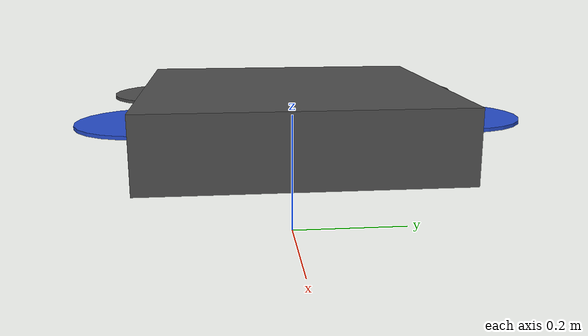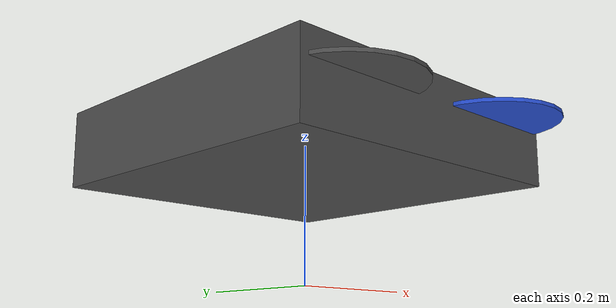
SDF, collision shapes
<?xml version="1.0" ?>
<sdf version="1.5">
  <model name='Moaziyat'>

    <pose>0 0 0.194923 0 0 0</pose>

    <!-- Base Link -->
    <link name='base_link'>
      <pose>0 0 0 0 0 0</pose>
      <inertial>
        <pose>0 0 0 0 0 0</pose>
        <mass>1.5</mass>
        <inertia>
          <ixx>0.029125</ixx>
          <ixy>0</ixy>
          <ixz>0</ixz>
          <iyy>0.029125</iyy>
          <iyz>0</iyz>
          <izz>0.055225</izz>
        </inertia>
      </inertial>

      <!-- Visual Element - Your Custom STL -->
      <visual name='base_link_visual'>
        <pose>0 0 0 0 0 0</pose>
        <geometry>
          <mesh>
            <scale>1 1 1</scale>
            <!-- Replace with your STL file path -->
            <uri>model://Moaziyat/meshes/Moaziyat.obj</uri>
          </mesh>
        </geometry>
        <material>
          <script>
            <name>Gazebo/DarkGrey</name>
            <uri>file://media/materials/scripts/gazebo.material</uri>
          </script>
        </material>
      </visual>

      <!-- Collision Element -->
      <collision name='base_link_collision'>
        <pose>0 0 0 0 0 0</pose>
        <geometry>
          <box>
            <size>0.47 0.47 0.11</size>
          </box>
        </geometry>
        <surface>
          <contact>
            <ode>
              <min_depth>0.001</min_depth>
              <max_vel>0</max_vel>
            </ode>
          </contact>
          <friction>
            <ode/>
          </friction>
        </surface>
      </collision>
    </link>

    <!-- Rotor 0 - Front Right -->
    <link name='rotor_0'>
      <pose>0.13 -0.22 0.023 0 0 0</pose>
      <inertial>
        <pose>0 0 0 0 0 0</pose>
        <mass>0.005</mass>
        <inertia>
          <ixx>9.75e-07</ixx>
          <ixy>0</ixy>
          <ixz>0</ixz>
          <iyy>0.000166704</iyy>
          <iyz>0</iyz>
          <izz>0.000167604</izz>
        </inertia>
      </inertial>
      <collision name='rotor_0_collision'>
        <pose>0 0 0 0 0 0</pose>
        <geometry>
          <cylinder>
            <length>0.005</length>
            <radius>0.1</radius>
          </cylinder>
        </geometry>
        <surface>
          <contact>
            <ode/>
          </contact>
          <friction>
            <ode/>
          </friction>
        </surface>
      </collision>
      <visual name='rotor_0_visual'>
        <pose>0 0 0 0 0 0</pose>
        <geometry>
          <mesh>
            <scale>1 1 1</scale>
            <uri>model://Moaziyat/meshes/Moaziyat_prop_ccw.dae</uri>
          </mesh>
        </geometry>
        <material>
          <script>
            <name>Gazebo/Blue</name>
            <uri>file://media/materials/scripts/gazebo.material</uri>
          </script>
        </material>
      </visual>
      <gravity>1</gravity>
      <velocity_decay/>
    </link>

    <joint name='rotor_0_joint' type='revolute'>
      <child>rotor_0</child>
      <parent>base_link</parent>
      <axis>
        <xyz>0 0 1</xyz>
        <limit>
          <lower>-1e+16</lower>
          <upper>1e+16</upper>
        </limit>
        <dynamics>
          <spring_reference>0</spring_reference>
          <spring_stiffness>0</spring_stiffness>
        </dynamics>
        <use_parent_model_frame>1</use_parent_model_frame>
      </axis>
    </joint>

    <!-- Rotor 1 - Back Left -->
    <link name='rotor_1'>
      <pose>-0.13 0.2 0.023 0 0 0</pose>
      <inertial>
        <pose>0 0 0 0 0 0</pose>
        <mass>0.005</mass>
        <inertia>
          <ixx>9.75e-07</ixx>
          <ixy>0</ixy>
          <ixz>0</ixz>
          <iyy>0.000166704</iyy>
          <iyz>0</iyz>
          <izz>0.000167604</izz>
        </inertia>
      </inertial>
      <collision name='rotor_1_collision'>
        <pose>0 0 0 0 0 0</pose>
        <geometry>
          <cylinder>
            <length>0.005</length>
            <radius>0.1</radius>
          </cylinder>
        </geometry>
        <surface>
          <contact>
            <ode/>
          </contact>
          <friction>
            <ode/>
          </friction>
        </surface>
      </collision>
      <visual name='rotor_1_visual'>
        <pose>0 0 0 0 0 0</pose>
        <geometry>
          <mesh>
            <scale>1 1 1</scale>
            <uri>model://Moaziyat/meshes/Moaziyat_prop_ccw.dae</uri>
          </mesh>
        </geometry>
        <material>
          <script>
            <name>Gazebo/DarkGrey</name>
            <uri>file://media/materials/scripts/gazebo.material</uri>
          </script>
        </material>
      </visual>
      <gravity>1</gravity>
      <velocity_decay/>
    </link>

    <joint name='rotor_1_joint' type='revolute'>
      <child>rotor_1</child>
      <parent>base_link</parent>
      <axis>
        <xyz>0 0 1</xyz>
        <limit>
          <lower>-1e+16</lower>
          <upper>1e+16</upper>
        </limit>
        <dynamics>
          <spring_reference>0</spring_reference>
          <spring_stiffness>0</spring_stiffness>
        </dynamics>
        <use_parent_model_frame>1</use_parent_model_frame>
      </axis>
    </joint>

    <!-- Rotor 2 - Front Left -->
    <link name='rotor_2'>
      <pose>0.13 0.22 0.023 0 0 0</pose>
      <inertial>
        <pose>0 0 0 0 0 0</pose>
        <mass>0.005</mass>
        <inertia>
          <ixx>9.75e-07</ixx>
          <ixy>0</ixy>
          <ixz>0</ixz>
          <iyy>0.000166704</iyy>
          <iyz>0</iyz>
          <izz>0.000167604</izz>
        </inertia>
      </inertial>
      <collision name='rotor_2_collision'>
        <pose>0 0 0 0 0 0</pose>
        <geometry>
          <cylinder>
            <length>0.005</length>
            <radius>0.1</radius>
          </cylinder>
        </geometry>
        <surface>
          <contact>
            <ode/>
          </contact>
          <friction>
            <ode/>
          </friction>
        </surface>
      </collision>
      <visual name='rotor_2_visual'>
        <pose>0 0 0 0 0 0</pose>
        <geometry>
          <mesh>
            <scale>1 1 1</scale>
            <uri>model://Moaziyat/meshes/Moaziyat_prop_cw.dae</uri>
          </mesh>
        </geometry>
        <material>
          <script>
            <name>Gazebo/Blue</name>
            <uri>file://media/materials/scripts/gazebo.material</uri>
          </script>
        </material>
      </visual>
      <gravity>1</gravity>
      <velocity_decay/>
    </link>

    <joint name='rotor_2_joint' type='revolute'>
      <child>rotor_2</child>
      <parent>base_link</parent>
      <axis>
        <xyz>0 0 1</xyz>
        <limit>
          <lower>-1e+16</lower>
          <upper>1e+16</upper>
        </limit>
        <dynamics>
          <spring_reference>0</spring_reference>
          <spring_stiffness>0</spring_stiffness>
        </dynamics>
        <use_parent_model_frame>1</use_parent_model_frame>
      </axis>
    </joint>

    <!-- Rotor 3 - Back Right -->
    <link name='rotor_3'>
      <pose>-0.13 -0.2 0.023 0 0 0</pose>
      <inertial>
        <pose>0 0 0 0 0 0</pose>
        <mass>0.005</mass>
        <inertia>
          <ixx>9.75e-07</ixx>
          <ixy>0</ixy>
          <ixz>0</ixz>
          <iyy>0.000166704</iyy>
          <iyz>0</iyz>
          <izz>0.000167604</izz>
        </inertia>
      </inertial>
      <collision name='rotor_3_collision'>
        <pose>0 0 0 0 0 0</pose>
        <geometry>
          <cylinder>
            <length>0.005</length>
            <radius>0.1</radius>
          </cylinder>
        </geometry>
        <surface>
          <contact>
            <ode/>
          </contact>
          <friction>
            <ode/>
          </friction>
        </surface>
      </collision>
      <visual name='rotor_3_visual'>
        <pose>0 0 0 0 0 0</pose>
        <geometry>
          <mesh>
            <scale>1 1 1</scale>
            <uri>model://Moaziyat/meshes/Moaziyat_prop_cw.dae</uri>
          </mesh>
        </geometry>
        <material>
          <script>
            <name>Gazebo/DarkGrey</name>
            <uri>file://media/materials/scripts/gazebo.material</uri>
          </script>
        </material>
      </visual>
      <gravity>1</gravity>
      <velocity_decay/>
    </link>

    <joint name='rotor_3_joint' type='revolute'>
      <child>rotor_3</child>
      <parent>base_link</parent>
      <axis>
        <xyz>0 0 1</xyz>
        <limit>
          <lower>-1e+16</lower>
          <upper>1e+16</upper>
        </limit>
        <dynamics>
          <spring_reference>0</spring_reference>
          <spring_stiffness>0</spring_stiffness>
        </dynamics>
        <use_parent_model_frame>1</use_parent_model_frame>
      </axis>
    </joint>

    <!-- Motor Plugins -->
    <plugin name='rotor_0_motor_model' filename='libgazebo_motor_model.so'>
      <robotNamespace/>
      <jointName>rotor_0_joint</jointName>
      <linkName>rotor_0</linkName>
      <turningDirection>ccw</turningDirection>
      <timeConstantUp>0.0125</timeConstantUp>
      <timeConstantDown>0.025</timeConstantDown>
      <maxRotVelocity>838</maxRotVelocity>
      <motorConstant>8.54858e-06</motorConstant>
      <momentConstant>0.016</momentConstant>
      <commandSubTopic>/gazebo/command/motor_speed</commandSubTopic>
      <motorNumber>0</motorNumber>
      <rotorDragCoefficient>8.06428e-05</rotorDragCoefficient>
      <rollingMomentCoefficient>1e-06</rollingMomentCoefficient>
      <motorSpeedPubTopic>/motor_speed/0</motorSpeedPubTopic>
      <rotorVelocitySlowdownSim>10</rotorVelocitySlowdownSim>
    </plugin>

    <plugin name='rotor_1_motor_model' filename='libgazebo_motor_model.so'>
      <robotNamespace/>
      <jointName>rotor_1_joint</jointName>
      <linkName>rotor_1</linkName>
      <turningDirection>ccw</turningDirection>
      <timeConstantUp>0.0125</timeConstantUp>
      <timeConstantDown>0.025</timeConstantDown>
      <maxRotVelocity>838</maxRotVelocity>
      <motorConstant>8.54858e-06</motorConstant>
      <momentConstant>0.016</momentConstant>
      <commandSubTopic>/gazebo/command/motor_speed</commandSubTopic>
      <motorNumber>1</motorNumber>
      <rotorDragCoefficient>8.06428e-05</rotorDragCoefficient>
      <rollingMomentCoefficient>1e-06</rollingMomentCoefficient>
      <motorSpeedPubTopic>/motor_speed/1</motorSpeedPubTopic>
      <rotorVelocitySlowdownSim>10</rotorVelocitySlowdownSim>
    </plugin>

    <plugin name='rotor_2_motor_model' filename='libgazebo_motor_model.so'>
      <robotNamespace/>
      <jointName>rotor_2_joint</jointName>
      <linkName>rotor_2</linkName>
      <turningDirection>cw</turningDirection>
      <timeConstantUp>0.0125</timeConstantUp>
      <timeConstantDown>0.025</timeConstantDown>
      <maxRotVelocity>838</maxRotVelocity>
      <motorConstant>8.54858e-06</motorConstant>
      <momentConstant>0.016</momentConstant>
      <commandSubTopic>/gazebo/command/motor_speed</commandSubTopic>
      <motorNumber>2</motorNumber>
      <rotorDragCoefficient>8.06428e-05</rotorDragCoefficient>
      <rollingMomentCoefficient>1e-06</rollingMomentCoefficient>
      <motorSpeedPubTopic>/motor_speed/2</motorSpeedPubTopic>
      <rotorVelocitySlowdownSim>10</rotorVelocitySlowdownSim>
    </plugin>

    <plugin name='rotor_3_motor_model' filename='libgazebo_motor_model.so'>
      <robotNamespace/>
      <jointName>rotor_3_joint</jointName>
      <linkName>rotor_3</linkName>
      <turningDirection>cw</turningDirection>
      <timeConstantUp>0.0125</timeConstantUp>
      <timeConstantDown>0.025</timeConstantDown>
      <maxRotVelocity>838</maxRotVelocity>
      <motorConstant>8.54858e-06</motorConstant>
      <momentConstant>0.016</momentConstant>
      <commandSubTopic>/gazebo/command/motor_speed</commandSubTopic>
      <motorNumber>3</motorNumber>
      <rotorDragCoefficient>8.06428e-05</rotorDragCoefficient>
      <rollingMomentCoefficient>1e-06</rollingMomentCoefficient>
      <motorSpeedPubTopic>/motor_speed/3</motorSpeedPubTopic>
      <rotorVelocitySlowdownSim>10</rotorVelocitySlowdownSim>
    </plugin>

    <!-- IMU Plugin -->
    <plugin name='groundtruth_plugin' filename='libgazebo_groundtruth_plugin.so'>
      <robotNamespace/>
    </plugin>

    <plugin name='magnetometer_plugin' filename='libgazebo_magnetometer_plugin.so'>
      <robotNamespace/>
      <pubRate>100</pubRate>
      <noiseDensity>0.0004</noiseDensity>
      <randomWalk>6.4e-06</randomWalk>
      <biasCorrelationTime>600</biasCorrelationTime>
      <magTopic>/mag</magTopic>
    </plugin>

    <plugin name='barometer_plugin' filename='libgazebo_barometer_plugin.so'>
      <robotNamespace/>
      <pubRate>50</pubRate>
      <baroTopic>/baro</baroTopic>
      <baroDriftPaPerSec>0</baroDriftPaPerSec>
    </plugin>

    <plugin name='mavlink_interface' filename='libgazebo_mavlink_interface.so'>
      <robotNamespace/>
      <imuSubTopic>/imu</imuSubTopic>
      <magSubTopic>/mag</magSubTopic>
      <baroSubTopic>/baro</baroSubTopic>
      <mavlink_addr>INADDR_ANY</mavlink_addr>
      <mavlink_tcp_port>4560</mavlink_tcp_port>
      <mavlink_udp_port>14560</mavlink_udp_port>
      <serialEnabled>0</serialEnabled>
      <serialDevice>/dev/ttyACM0</serialDevice>
      <baudRate>921600</baudRate>
      <qgc_addr>INADDR_ANY</qgc_addr>
      <qgc_udp_port>14550</qgc_udp_port>
      <sdk_addr>INADDR_ANY</sdk_addr>
      <sdk_udp_port>14540</sdk_udp_port>
      <hil_mode>0</hil_mode>
      <hil_state_level>0</hil_state_level>
      <vehicle_is_tailsitter>0</vehicle_is_tailsitter>
      <send_vision_estimation>0</send_vision_estimation>
      <send_odometry>0</send_odometry>
      <enable_lockstep>1</enable_lockstep>
      <use_tcp>1</use_tcp>
      <motorSpeedCommandPubTopic>/gazebo/command/motor_speed</motorSpeedCommandPubTopic>
      <control_channels>
        <channel name='rotor1'>
          <input_index>0</input_index>
          <input_offset>0</input_offset>
          <input_scaling>838</input_scaling>
          <zero_position_disarmed>0</zero_position_disarmed>
          <zero_position_armed>100</zero_position_armed>
          <joint_control_type>velocity</joint_control_type>
        </channel>
        <channel name='rotor2'>
          <input_index>1</input_index>
          <input_offset>0</input_offset>
          <input_scaling>838</input_scaling>
          <zero_position_disarmed>0</zero_position_disarmed>
          <zero_position_armed>100</zero_position_armed>
          <joint_control_type>velocity</joint_control_type>
        </channel>
        <channel name='rotor3'>
          <input_index>2</input_index>
          <input_offset>0</input_offset>
          <input_scaling>838</input_scaling>
          <zero_position_disarmed>0</zero_position_disarmed>
          <zero_position_armed>100</zero_position_armed>
          <joint_control_type>velocity</joint_control_type>
        </channel>
        <channel name='rotor4'>
          <input_index>3</input_index>
          <input_offset>0</input_offset>
          <input_scaling>838</input_scaling>
          <zero_position_disarmed>0</zero_position_disarmed>
          <zero_position_armed>100</zero_position_armed>
          <joint_control_type>velocity</joint_control_type>
        </channel>
      </control_channels>
    </plugin>

    <!-- GPS Plugin -->
    <plugin name='gps_plugin' filename='libgazebo_gps_plugin.so'>
      <robotNamespace/>
      <gpsNoise>true</gpsNoise>
    </plugin>

  </model>
</sdf>
